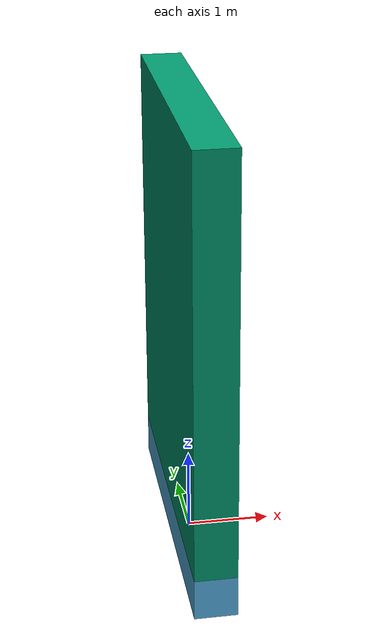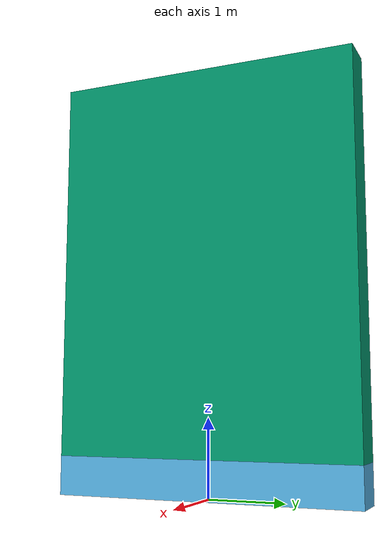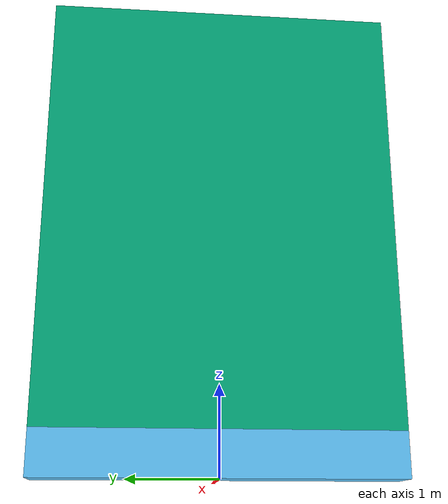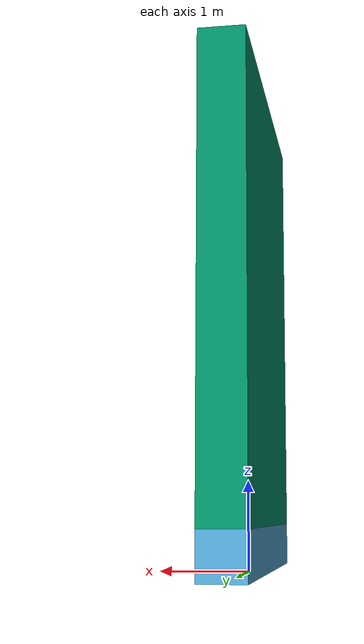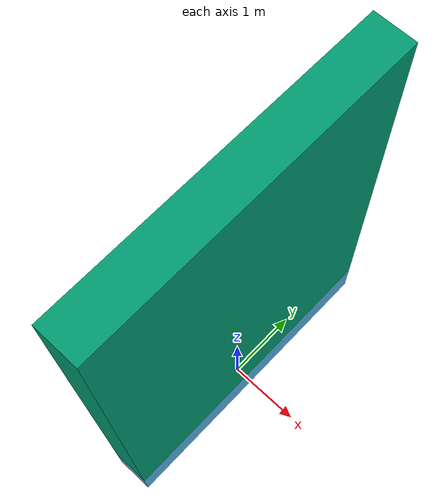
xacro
<?xml version="1.0"?>

<robot name="wall" xmlns:xacro="http://ros.org/wiki/xacro">
  <xacro:property name="PI" value="3.14" />

  	<link name="world"></link>

  	<link name="wall_bott">
      <inertial>
        <origin rpy="0 0 0" xyz="0 0 0"/>
          <mass value="1" />
          <inertia
            ixx="1"  ixy="0.0" ixz="0.0"
            iyx="0.0" iyy="1" iyz="0.0"
            izx="0.0" izy="0.0" izz="1" />
      </inertial>
      <visual>
      	<origin rpy="0 0 0" xyz="0 0 0.25"/>
        <geometry>
          <box size="0.5 4 0.5"/>
        </geometry>
      </visual>
    </link>

    <link name="wall_top">
      <inertial>
        <origin rpy="0 0 0" xyz="0 0 0"/>
          <mass value="1" />
          <inertia
            ixx="1"  ixy="0.0" ixz="0.0"
            iyx="0.0" iyy="1" iyz="0.0"
            izx="0.0" izy="0.0" izz="1" />
      </inertial>
      <visual>
      	<origin rpy="0 0 0" xyz="0 0 2.5"/>
        <geometry>
          <box size="0.5 4 5"/>
        </geometry>
      </visual>
      <collision>
        <origin rpy="0 0 0" xyz="0 0 2.5"/>
        <geometry>
            <box size="0.5 4 5"/>
        </geometry>
      </collision>
    </link>

    <joint name="wall1" type="fixed">
        <origin xyz="0 0 0" rpy="0 0 0" />
        <parent link="world"/>
        <child link="wall_bott"/>
    </joint>

    <joint name="wall2" type="prismatic">
        <origin xyz="0 0 0.5" rpy="0 0 0" />
        <parent link="wall_bott"/>
        <child link="wall_top"/>
        <axis xyz="1 0 0" />
        <limit effort="0" velocity="0" lower="0" upper="0" />
    </joint>

</robot>
